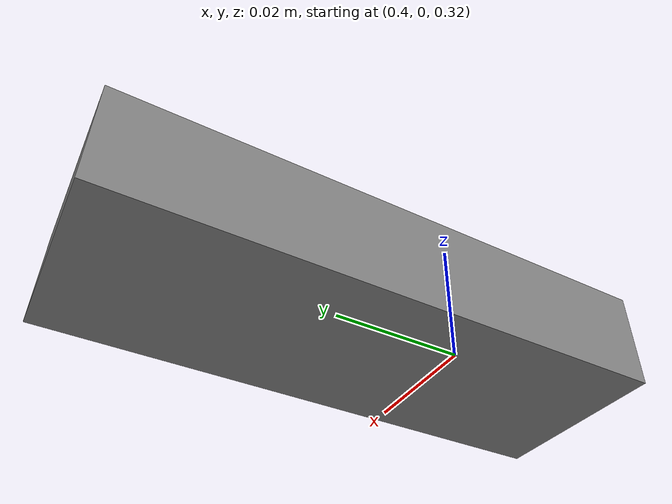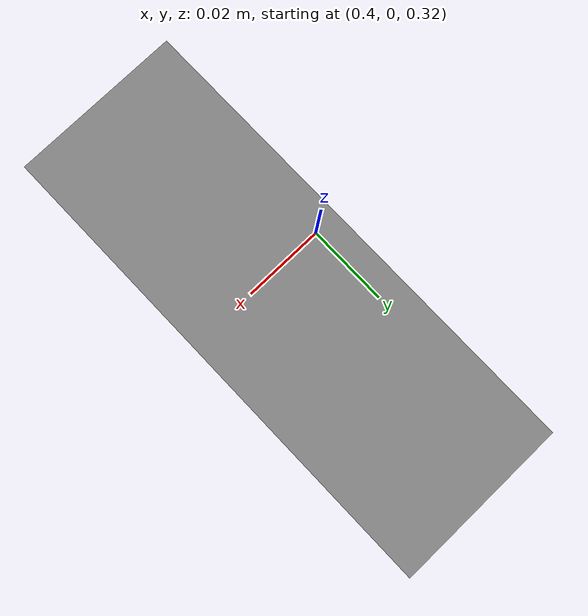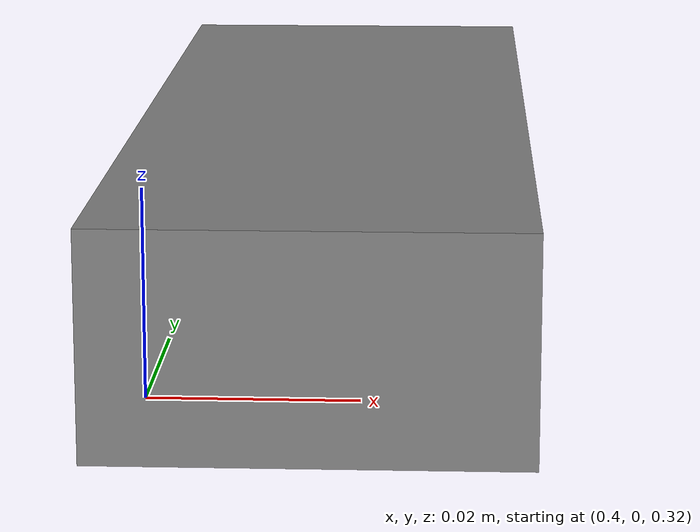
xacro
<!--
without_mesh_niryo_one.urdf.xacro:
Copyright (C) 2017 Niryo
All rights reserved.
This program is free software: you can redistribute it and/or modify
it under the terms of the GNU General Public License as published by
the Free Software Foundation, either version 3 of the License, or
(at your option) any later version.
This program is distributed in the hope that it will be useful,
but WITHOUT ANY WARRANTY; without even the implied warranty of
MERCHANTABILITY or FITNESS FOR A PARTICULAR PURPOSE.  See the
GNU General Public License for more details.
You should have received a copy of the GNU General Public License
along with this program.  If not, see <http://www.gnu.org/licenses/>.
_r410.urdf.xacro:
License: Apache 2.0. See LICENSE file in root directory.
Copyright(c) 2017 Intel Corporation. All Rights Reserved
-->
<?xml version="1.0"?>

<robot name="niryo_one" xmlns:xacro="http://ros.org/wiki/xacro">

  <xacro:include filename="$(find niryo_one_description)/urdf/v2/without_mesh_niryo_one.urdf.xacro" />
  <xacro:include filename="$(find niryo_one_description)/urdf/v2/test_r410_camera.urdf.xacro" />

 </robot>

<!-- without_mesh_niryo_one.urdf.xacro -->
<robot xmlns:xacro="http://ros.org/wiki/xacro" name="niryo_one">

	<!-- Properties -->

    <xacro:property name="distance_origin_shoulder_z" value="0.103" />
    <xacro:property name="distance_shoulder_arm_z" value="0.080" />
    <xacro:property name="distance_arm_elbow_x" value="0.210" />
    <xacro:property name="distance_arm_elbow_y" value="0.0" />
    <xacro:property name="distance_elbow_forearm_x" value="0.0415" />
    <xacro:property name="distance_elbow_forearm_y" value="0.030" />
    <xacro:property name="distance_forearm_wrist_z" value="0.180" />
    <xacro:property name="distance_wrist_hand_x" value="0.0164" />
    <xacro:property name="distance_wrist_hand_y" value="-0.0055" />
    <xacro:property name="distance_hand_tool" value="0.0073" />

	<xacro:property name="PI" value="3.14159265359" />

    <xacro:property name="limit_low_shoulder_rotation" value="-3.05433" />
    <xacro:property name="limit_up_shoulder_rotation" value="3.05433" />
    <xacro:property name="limit_low_arm_rotation" value="-1.91986" />
    <xacro:property name="limit_up_arm_rotation" value="0.640187" />
    <xacro:property name="limit_low_elbow_rotation" value="-1.397485" />
    <xacro:property name="limit_up_elbow_rotation" value="${PI/2}" />
    <xacro:property name="limit_low_forearm_rotation" value="-3.05433" />
    <xacro:property name="limit_up_forearm_rotation" value="3.05433" />
    <xacro:property name="limit_low_wrist_rotation" value="-1.74533" />
    <xacro:property name="limit_up_wrist_rotation" value="1.91986" />
    <xacro:property name="limit_low_hand_rotation" value="-2.57436" />
    <xacro:property name="limit_up_hand_rotation" value="2.57436" />

	<!-- Links -->

    <link name="ground_link"/>

    <link name="base_link">
	</link>

    <link name="shoulder_link">
	</link>

    <link name="arm_link">
	</link>

    <link name="elbow_link">
	</link>

    <link name="forearm_link">
	</link>

    <link name="wrist_link">
	</link>

    <link name="hand_link">
	</link>

    <link name="tool_link">
	</link>

	<!--Joints -->

    <joint name="ground_joint" type="fixed">
        <parent link="ground_link" />
        <child link="base_link" />
        <origin xyz="0 0 0" rpy="0 0 0" />
    </joint>

	<joint name="joint_1" type="revolute">
        <parent link="base_link" />
        <child link="shoulder_link" />
		<origin xyz="0 0 ${distance_origin_shoulder_z}" rpy="0 0 0" />
		<axis xyz="0 0 1" />
		<limit effort="1" velocity="1.0" lower="${limit_low_shoulder_rotation}" upper="${limit_up_shoulder_rotation}" />
	</joint>

	<joint name="joint_2" type="revolute">
        <parent link="shoulder_link" />
        <child link="arm_link" />
        <origin xyz="0 0 ${distance_shoulder_arm_z}" rpy="${PI/2} ${-PI/2} 0" />
		<limit effort="1" velocity="1.0" lower="${limit_low_arm_rotation}" upper="${limit_up_arm_rotation}" />
		<axis xyz="0 0 1" />
	</joint>

	<joint name="joint_3" type="revolute">
        <parent link="arm_link" />
        <child link="elbow_link" />
        <origin xyz="${distance_arm_elbow_x} ${distance_arm_elbow_y} 0" rpy="0 0 ${-PI/2}" />
		<limit effort="1" velocity="1.0" lower="${limit_low_elbow_rotation}" upper="${limit_up_elbow_rotation}" />
		<axis xyz="0 0 1" />
	</joint>

	<joint name="joint_4" type="revolute">
        <parent link="elbow_link" />
        <child link="forearm_link" />
        <origin xyz="${distance_elbow_forearm_x} ${distance_elbow_forearm_y} 0" rpy="0 ${PI/2} 0" />
		<limit effort="1" velocity="1.0" lower="${limit_low_forearm_rotation}" upper="${limit_up_forearm_rotation}" />
		<axis xyz="0 0 1" />
	</joint>

	<joint name="joint_5" type="revolute">
        <parent link="forearm_link" />
        <child link="wrist_link" />
		<origin xyz="0 0 ${distance_forearm_wrist_z}" rpy="0 ${-PI/2} 0" />
		<limit effort="1" velocity="1.0" lower="${limit_low_wrist_rotation}" upper="${limit_up_wrist_rotation}" />
		<axis xyz="0 0 1" />
	</joint>

	<joint name="joint_6" type="revolute">
        <parent link="wrist_link" />
        <child link="hand_link" />
        <origin xyz="${distance_wrist_hand_x} ${distance_wrist_hand_y} 0" rpy="0 ${PI/2} 0" />
		<limit effort="1" velocity="1.0" lower="${limit_low_hand_rotation}" upper="${limit_up_hand_rotation}" />
		<axis xyz="0 0 1" />
	</joint>

	<joint name="hand_tool_joint" type="fixed">
        <parent link="hand_link" />
        <child link="tool_link" />
        <origin xyz="0 0 ${distance_hand_tool}" rpy="${-PI/2} ${-PI/2} 0" />
	</joint>

</robot>

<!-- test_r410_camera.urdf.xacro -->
<robot name="realsense2_camera" xmlns:xacro="http://ros.org/wiki/xacro">
  <xacro:include filename="$(find realsense2_camera)/urdf/_r410.urdf.xacro"/>

  <sensor_r410 parent="base_link">
    <origin xyz="0.435 -0.03 0.337" rpy=" 3.14 1.57 0"/>

  </sensor_r410>

</robot>

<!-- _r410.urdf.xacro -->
<robot name="sensor_r410" xmlns:xacro="http://www.ros.org/wiki/xacro">
  <xacro:property name="M_PI" value="3.1415926535897931" />

  <!-- The following values are approximate, and the camera node
   publishing TF values with actual calibrated camera extrinsic values -->
  <xacro:property name="r410_cam_depth_to_left_ir_offset" value="-0.0275"/>
  <xacro:property name="r410_cam_depth_to_right_ir_offset" value="0.0275"/>

  <!-- The following values model the aluminum peripherial case for the
    R410 camera, with the camera joint represented by the actual
    peripherial camera tripod mount -->
  <xacro:property name="r410_cam_width" value="0.099"/>
  <xacro:property name="r410_cam_height" value="0.035"/>
  <xacro:property name="r410_cam_depth" value="0.0185"/>
  <xacro:property name="r410_cam_mount_from_center_offset" value=".0375"/>

  <!-- The following offset is relative the the physical R410 camera peripherial
    camera tripod mount -->
  <xacro:property name="r410_cam_depth_px" value="0.00"/>
  <xacro:property name="r410_cam_depth_py" value="-0.0425"/>
  <xacro:property name="r410_cam_depth_pz" value="0.026"/>

  <material name="aluminum">
    <color rgba="0.5 0.5 0.5 1"/>
  </material>

  <xacro:macro name="sensor_r410" params="parent *origin">

    <!-- camera body, with origin at bottom screw mount -->
    <joint name="camera_joint" type="fixed">
      <xacro:insert_block name="origin" />
      <parent link="${parent}"/>
      <child link="camera_link" />
    </joint>

    <link name="camera_link">
      <visual>
      <origin xyz="0 ${-r410_cam_mount_from_center_offset} ${r410_cam_height/2}" rpy="${M_PI/2} 0 ${M_PI/2}"/>
        <geometry>
          <box size="${r410_cam_width} ${r410_cam_height} ${r410_cam_depth}"/>
        </geometry>
        <material name="aluminum"/>
      </visual>
      <collision>
        <origin xyz="0.0 0.0 ${r410_cam_height/2}" rpy="0 0 0"/>
        <geometry>
        <box size="${r410_cam_depth} ${r410_cam_width} ${r410_cam_height}"/>
        </geometry>
      </collision>
      <inertial>
        <!-- The following are not reliable values, and should not be used for modeling -->
        <mass value="0.564" />
        <origin xyz="0 0 0" />
        <inertia ixx="0.003881243" ixy="0.0" ixz="0.0" iyy="0.000498940" iyz="0.0" izz="0.003879257" />
      </inertial>
    </link>

    <!-- camera depth joints and links -->
    <joint name="camera_depth_joint" type="fixed">
      <origin xyz="${r410_cam_depth_px} ${r410_cam_depth_py} ${r410_cam_depth_pz}" rpy="0 0 0"/>
      <parent link="camera_link"/>
      <child link="camera_depth_frame" />
    </joint>
    <link name="camera_depth_frame"/>

    <joint name="camera_depth_optical_joint" type="fixed">
      <origin xyz="0 0 0" rpy="${-M_PI/2} 0 ${-M_PI/2}" />
      <parent link="camera_depth_frame" />
      <child link="camera_depth_optical_frame" />
    </joint>
    <link name="camera_depth_optical_frame"/>

    <!-- camera left IR joints and links -->
    <joint name="camera_left_ir_joint" type="fixed">
      <origin xyz="0 ${r410_cam_depth_to_left_ir_offset} 0" rpy="0 0 0" />
      <parent link="camera_depth_frame" />
      <child link="camera_left_ir_frame" />
    </joint>
    <link name="camera_left_ir_frame"/>

    <joint name="camera_left_ir_optical_joint" type="fixed">
      <origin xyz="0 0 0" rpy="${-M_PI/2} 0 ${-M_PI/2}" />
      <parent link="camera_left_ir_frame" />
      <child link="camera_left_ir_optical_frame" />
    </joint>
    <link name="camera_left_ir_optical_frame"/>

    <!-- camera right IR joints and links -->
    <joint name="camera_right_ir_joint" type="fixed">
      <origin xyz="0 ${r410_cam_depth_to_right_ir_offset} 0" rpy="0 0 0" />
      <parent link="camera_depth_frame" />
      <child link="camera_right_ir_frame" />
    </joint>
    <link name="camera_right_ir_frame"/>

    <joint name="camera_right_ir_optical_joint" type="fixed">
      <origin xyz="0 0 0" rpy="${-M_PI/2} 0 ${-M_PI/2}" />
      <parent link="camera_right_ir_frame" />
      <child link="camera_right_ir_optical_frame" />
    </joint>
    <link name="camera_right_ir_optical_frame"/>
  </xacro:macro>
</robot>
